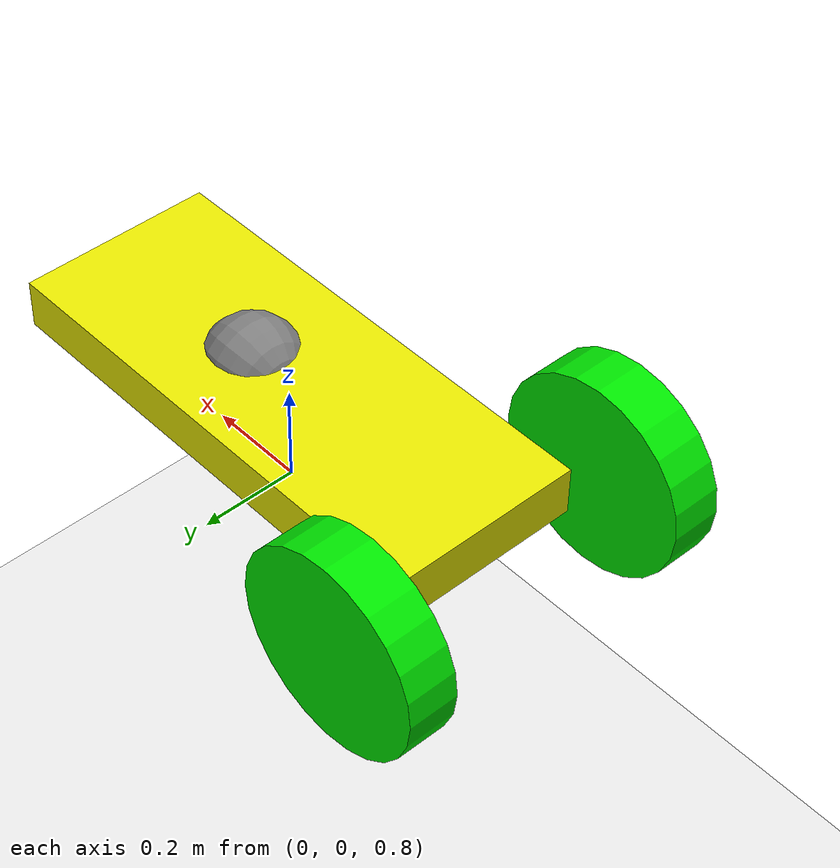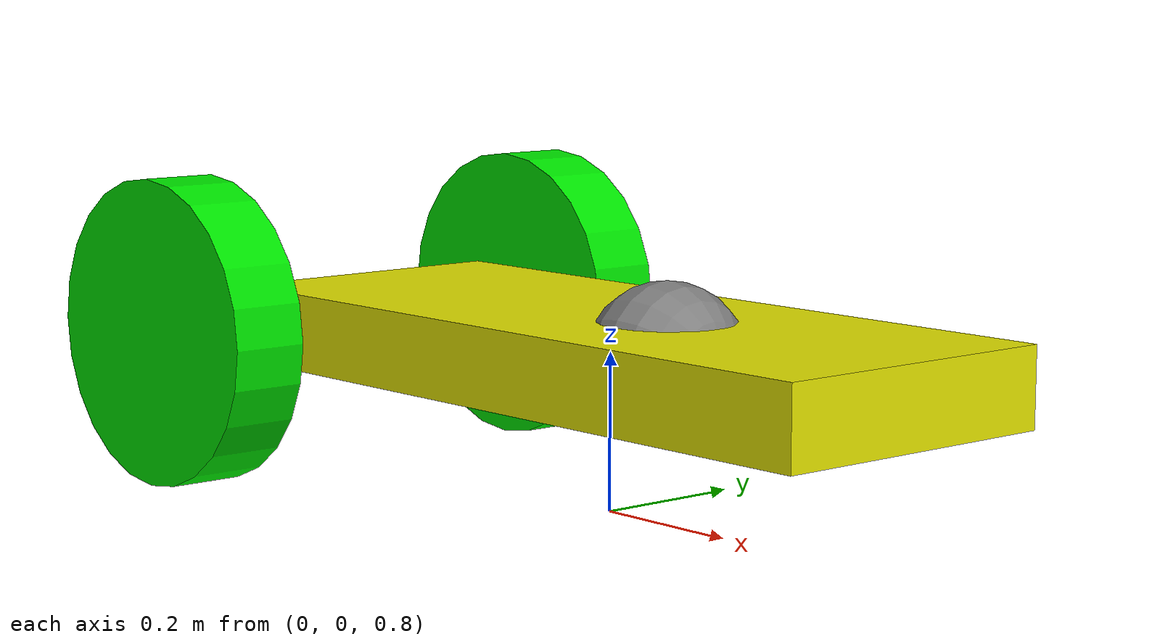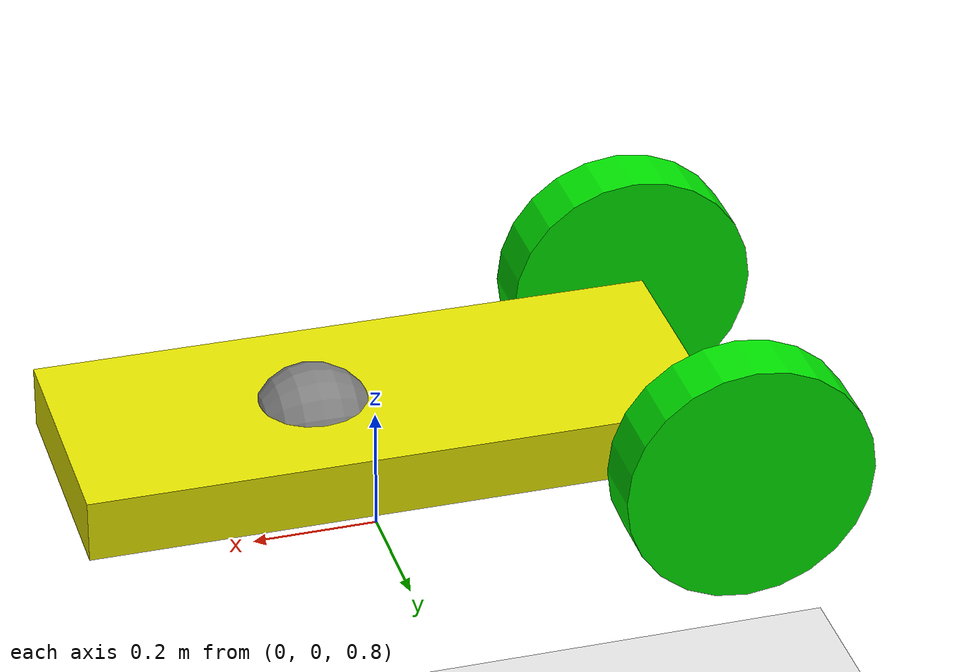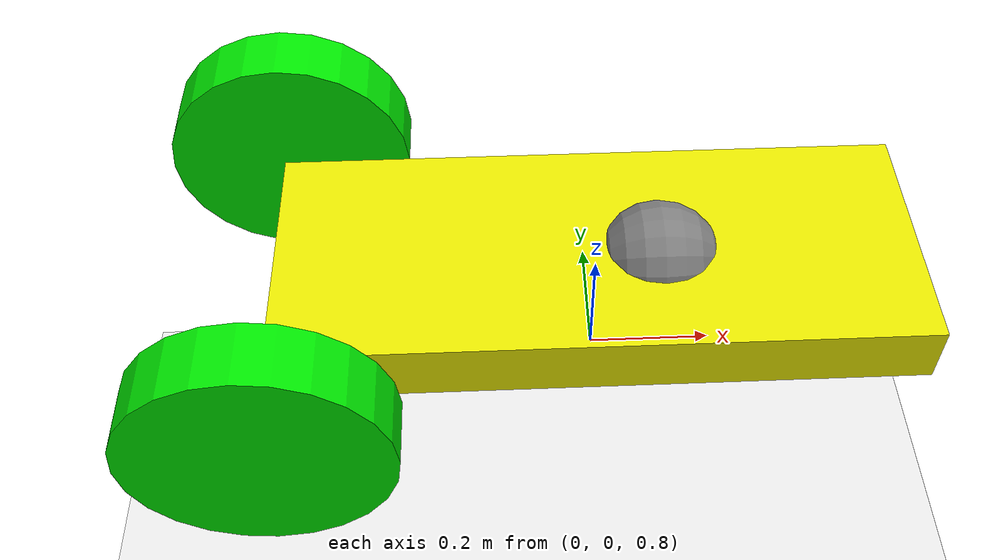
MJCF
<mujoco>
	<option gravity="0 0 -9.81" />
	<worldbody>
        <light diffuse=".5 .5 .5" pos="0 0 3" dir="0 0 -1"/>
		<geom type="plane" size="5 5 0.1" rgba=".9 .9 .9 1"/>
		<body name="chassis" pos="0 0 1" euler="0 90 0">
			<joint type="free"/>
			<geom type="box" size=".05 .2 .5" rgba=".9 .9 0 1"/>
			<site name="marker" pos="0 0 0.1" size="0.1" />
			<body pos="0 0.3 -0.5" euler="90 0 0">
				<joint name="left-wheel" type="hinge" axis="0 0 -1"/>
				<geom type="cylinder" size=".2 .05" rgba="0 .9 0 1"/>
			</body>
			<body  pos="0 -0.3 -0.5" euler="90 0 0">
				<joint name="right-wheel" type="hinge" axis="0 0 -1"/>
				<geom type="cylinder" size=".2 .05" rgba="0 .9 0 1"/>
			</body>
		</body>
	</worldbody>

	<sensor>
		<framepos objtype="site" objname="marker"/>
	</sensor>

	<actuator>
		<velocity joint="left-wheel" name="left-velocity-servo" kv="100"/>
		<velocity joint="right-wheel" name="right-velocity-servo" kv="100"/>
	</actuator>
</mujoco>
